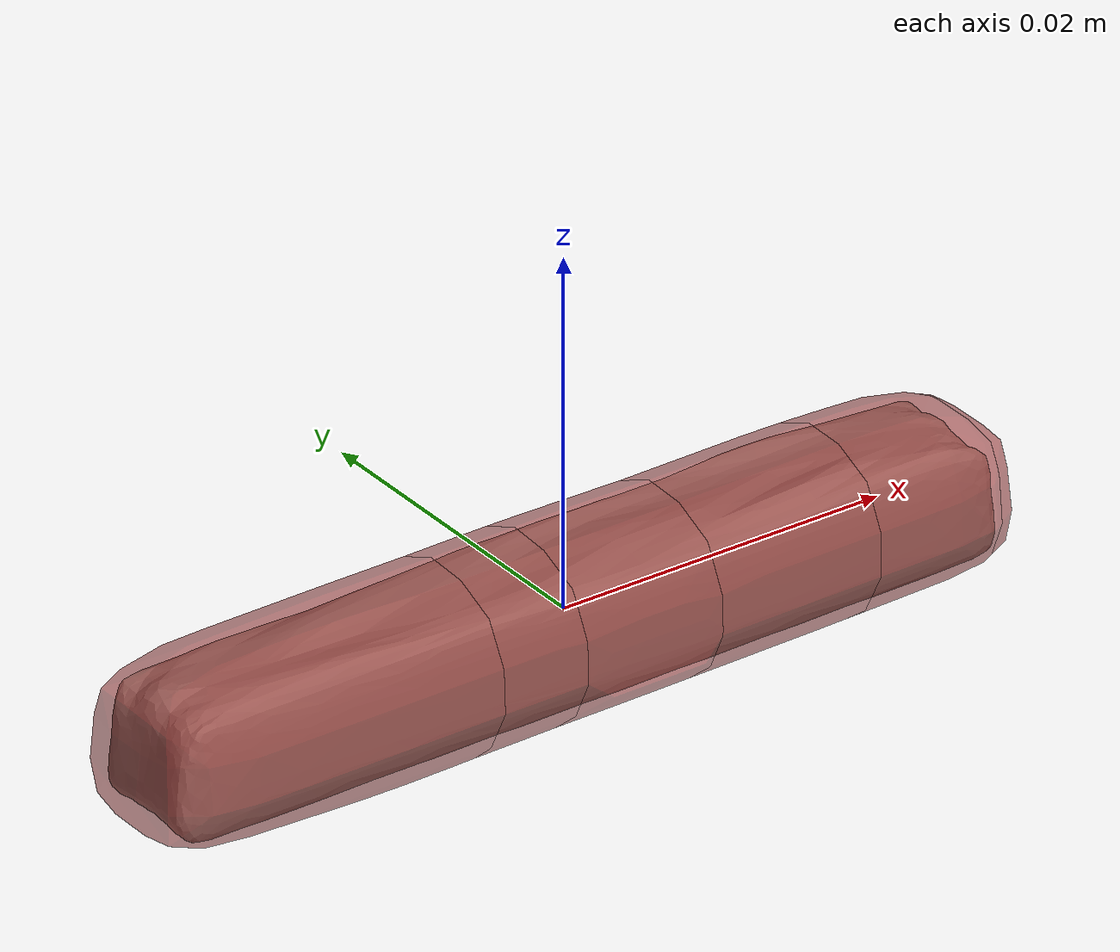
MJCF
<mujoco model="model">
  <compiler angle="radian"/>
  <asset>
    <mesh file="visual/CreamCheese011.obj" name="CreamCheese011_vis"/>
    <texture file="visual/T_BC001.png" name="CreamCheese011_material" type="2d"/>
    <material name="CreamCheese011_material" rgba="1 1 1 1.0" texture="CreamCheese011_material" shininess="0.10000002384185791" specular="0.33333333333333337"/>
    <mesh file="collision/CreamCheese011001.obj" name="CreamCheese011001_mesh"/>
    <mesh file="collision/CreamCheese011003.obj" name="CreamCheese011003_mesh"/>
    <mesh file="collision/CreamCheese011006.obj" name="CreamCheese011006_mesh"/>
    <mesh file="collision/CreamCheese011005.obj" name="CreamCheese011005_mesh"/>
    <mesh file="collision/CreamCheese011002.obj" name="CreamCheese011002_mesh"/>
    <mesh file="collision/CreamCheese011004.obj" name="CreamCheese011004_mesh"/>
  </asset>
  <default>
    <default class="visual">
      <geom conaffinity="0" contype="0" group="1" type="mesh"/>
    </default>
    <default class="collision">
      <geom group="0" rgba="0.5 0 0 0.5"/>
    </default>
    <default class="spawn">
      <geom group="0" rgba="1 1 1 0.5" contype="0" conaffinity="0"/>
      <site group="0" rgba="1 1 1 0.5"/>
    </default>
    <default class="region">
      <geom group="1" conaffinity="0" contype="0" rgba="0 1 0 0" mass="0"/>
    </default>
  </default>
  <worldbody>
    <body>
      <body name="object">
        <geom mesh="CreamCheese011_vis" type="mesh" solimp="0.998 0.998 0.001" solref="0.001 1" density="100" friction="0.95 0.3 0.1" class="visual" material="CreamCheese011_material"/>
        <geom mesh="CreamCheese011001_mesh" type="mesh" class="collision"/>
        <geom mesh="CreamCheese011003_mesh" type="mesh" class="collision"/>
        <geom mesh="CreamCheese011006_mesh" type="mesh" class="collision"/>
        <geom mesh="CreamCheese011005_mesh" type="mesh" class="collision"/>
        <geom mesh="CreamCheese011002_mesh" type="mesh" class="collision"/>
        <geom mesh="CreamCheese011004_mesh" type="mesh" class="collision"/>
        <geom class="region" name="reg_bbox" type="box" pos="-3.11500000000145e-06 5.050000000000367e-07 -9.595000000000003e-05" size="0.026751845 0.005130365 0.00503261"/>
      </body>
    </body>
  </worldbody>
  <actuator/>
</mujoco>
